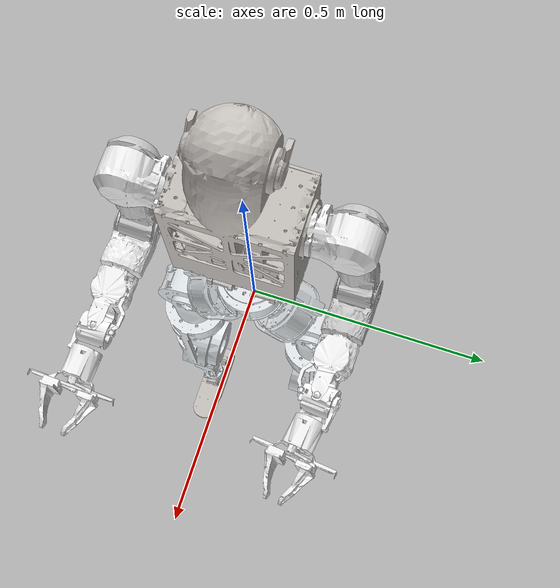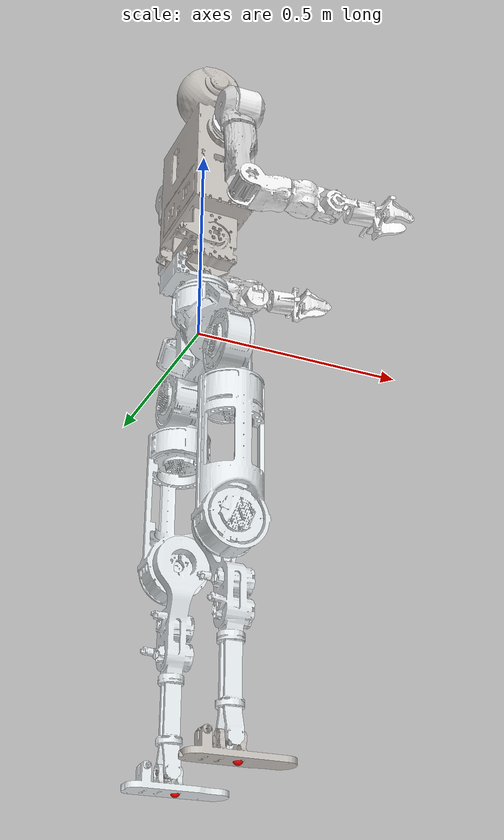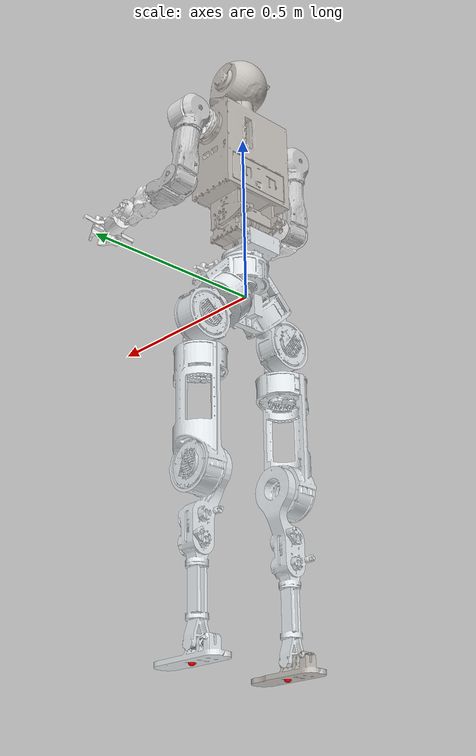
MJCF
<mujoco model="A00机器人全身">
  <compiler angle="radian" meshdir="meshes/" />
  <asset>
    <mesh name="base_link" file="base_link.STL" />
    <mesh name="right_hip_pitch" file="right_hip_pitch.STL" />
    <mesh name="right_hip_roll" file="right_hip_roll.STL" />
    <mesh name="right_hip_yaw" file="right_hip_yaw.STL" />
    <mesh name="right_knee" file="right_knee.STL" />
    <mesh name="right_ankle_pitch" file="right_ankle_pitch.STL" />
    <mesh name="right_ankle_roll" file="right_ankle_roll.STL" />
    <mesh name="left_hip_pitch" file="left_hip_pitch.STL" />
    <mesh name="left_hip_roll" file="left_hip_roll.STL" />
    <mesh name="left_hip_yaw" file="left_hip_yaw.STL" />
    <mesh name="left_knee" file="left_knee.STL" />
    <mesh name="left_ankle_pitch" file="left_ankle_pitch.STL" />
    <mesh name="left_ankle_roll" file="left_ankle_roll.STL" />
    <mesh name="waist_yaw" file="waist_yaw.STL" />
    <mesh name="waist_roll" file="waist_roll.STL" />
    <mesh name="waist_pitch" file="waist_pitch.STL" />
    <mesh name="left_shoulder_pitch" file="left_shoulder_pitch.STL" />
    <mesh name="left_shoulder_roll" file="left_shoulder_roll.STL" />
    <mesh name="left_shoulder_yaw" file="left_shoulder_yaw.STL" />
    <mesh name="left_elbow" file="left_elbow.STL" />
    <mesh name="left_wrist_yaw" file="left_wrist_yaw.STL" />
    <mesh name="left_wrist_roll" file="left_wrist_roll.STL" />
    <mesh name="left_wrist_pitch" file="left_wrist_pitch.STL" />
    <mesh name="left_finger" file="left_finger.STL" />
    <mesh name="right_shoulder_pitch" file="right_shoulder_pitch.STL" />
    <mesh name="right_shoulder_roll" file="right_shoulder_roll.STL" />
    <mesh name="right_shoulder_yaw" file="right_shoulder_yaw.STL" />
    <mesh name="right_elbow" file="right_elbow.STL" />
    <mesh name="right_wrist_yaw" file="right_wrist_yaw.STL" />
    <mesh name="right_wrist_roll" file="right_wrist_roll.STL" />
    <mesh name="right_wrist_pitch" file="right_wrist_pitch.STL" />
    <mesh name="right_finger" file="right_finger.STL" />
    <material name="base_link_mat" rgba="0.898 0.9176 0.9294 1" specular="0" />
    <material name="right_hip_pitch_mat" rgba="0.898 0.9176 0.9294 1" specular="0" />
    <material name="right_hip_roll_mat" rgba="0.898 0.9176 0.9294 1" specular="0" />
    <material name="right_hip_yaw_mat" rgba="0.898 0.9176 0.9294 1" specular="0" />
    <material name="right_knee_mat" rgba="0.898 0.9176 0.9294 1" specular="0" />
    <material name="right_ankle_pitch_mat" rgba="0.651 0.6196 0.5882 1" specular="0" />
    <material name="right_ankle_roll_mat" rgba="0.7765 0.7569 0.7373 1" specular="0" />
    <material name="left_hip_pitch_mat" rgba="0.898 0.9176 0.9294 1" specular="0" />
    <material name="left_hip_roll_mat" rgba="0.898 0.9176 0.9294 1" specular="0" />
    <material name="left_hip_yaw_mat" rgba="0.898 0.9176 0.9294 1" specular="0" />
    <material name="left_knee_mat" rgba="0.898 0.9176 0.9294 1" specular="0" />
    <material name="left_ankle_pitch_mat" rgba="0.651 0.6196 0.5882 1" specular="0" />
    <material name="left_ankle_roll_mat" rgba="0.898 0.9176 0.9294 1" specular="0" />
    <material name="waist_yaw_mat" rgba="0.898 0.9176 0.9294 1" specular="0" />
    <material name="waist_roll_mat" rgba="0.651 0.6196 0.5882 1" specular="0" />
    <material name="waist_pitch_mat" rgba="0.7765 0.7569 0.7373 1" specular="0" />
    <material name="left_shoulder_pitch_mat" rgba="0.9608 0.9608 0.9647 1" specular="0" />
    <material name="left_shoulder_roll_mat" rgba="0.7961 0.7961 0.7961 1" specular="0" />
    <material name="left_shoulder_yaw_mat" rgba="0.7961 0.7961 0.7961 1" specular="0" />
    <material name="left_elbow_mat" rgba="0.7961 0.7961 0.7961 1" specular="0" />
    <material name="left_wrist_yaw_mat" rgba="0.9608 0.9608 0.9647 1" specular="0" />
    <material name="left_wrist_roll_mat" rgba="0.9608 0.9608 0.9647 1" specular="0" />
    <material name="left_wrist_pitch_mat" rgba="0.9608 0.9608 0.9647 1" specular="0" />
    <material name="left_finger_mat" rgba="0.9608 0.9608 0.9647 1" specular="0" />
    <material name="right_shoulder_pitch_mat" rgba="0.9608 0.9608 0.9647 1" specular="0" />
    <material name="right_shoulder_roll_mat" rgba="0.7961 0.7961 0.7961 1" specular="0" />
    <material name="right_shoulder_yaw_mat" rgba="0.7961 0.7961 0.7961 1" specular="0" />
    <material name="right_elbow_mat" rgba="0.9608 0.9608 0.9647 1" specular="0" />
    <material name="right_wrist_yaw_mat" rgba="0.9608 0.9608 0.9647 1" specular="0" />
    <material name="right_wrist_roll_mat" rgba="0.9608 0.9608 0.9647 1" specular="0" />
    <material name="right_wrist_pitch_mat" rgba="0.9608 0.9608 0.9647 1" specular="0" />
    <material name="right_finger_mat" rgba="0.9608 0.9608 0.9647 1" specular="0" />
  </asset>

  <worldbody>
    <body name="base_link" pos="0 0 0">
      <freejoint/>
      <inertial pos="0.0062931 0.0000042 0.0048445" mass="6.7431024" fullinertia="0.04798608 0.02438048 0.03707175 -0.00000106 -0.00001458 -0.00000075"/>
      <geom pos="0 0 0" group="1" contype="0" conaffinity="0" material="base_link_mat" type="mesh" mesh="base_link" />
      <geom name="base_link_collision" pos="0 0 0" rgba="0 1 0 1" group="3" contype="1" conaffinity="1" type="mesh" mesh="base_link" />
      <site name="imu_in_base_link" size="0.01" pos="0 0 -0.006" group="5" rgba="1 1 1 1" />
      <body name="right_hip_pitch" pos="0.007 -0.088213 -0.043889" quat="0.3826809 0.9238806 0 0">
        <joint name="right_hip_pitch" type="hinge" axis="0 0 1" limited="true" range="-1.57 1.57" damping="0" frictionloss="0"/>
        <inertial pos="0.0034587 0.0001817 0.0762996" mass="2.1971591" fullinertia="0.00514701 0.00334734 0.0031234 0.00000153 -0.00000951 0.00002633"/>
        <geom pos="0 0 0" group="1" contype="0" conaffinity="0" material="right_hip_pitch_mat" type="mesh" mesh="right_hip_pitch" />
        <geom name="right_hip_pitch_collision" pos="0 0 0" rgba="0 1 0 1" group="3" contype="1" conaffinity="1" type="mesh" mesh="right_hip_pitch" />
        <body name="right_hip_roll" pos="0.027 0 0.079" quat="0.6532807 -0.2705975 0.6532827 -0.2705975">
          <joint name="right_hip_roll" type="hinge" axis="0 0 1" limited="true" range="-1.57 1.57" damping="0" frictionloss="0"/>
          <inertial pos="0.0000005 -0.1119888 -0.0108781" mass="1.9765809" fullinertia="0.00495257 0.00288709 0.00488194 0.00000035 -0.0000077 -0.00066567"/>
          <geom pos="0 0 0" group="1" contype="0" conaffinity="0" material="right_hip_roll_mat" type="mesh" mesh="right_hip_roll" />
          <geom name="right_hip_roll_collision" pos="0 0 0" rgba="0 1 0 1" group="3" contype="1" conaffinity="1" type="mesh" mesh="right_hip_roll" />
          <body name="right_hip_yaw" pos="0 -0.104 -0.015" quat="0.7071055 -0.7071081 0 0">
            <joint name="right_hip_yaw" type="hinge" axis="0 0 -1" limited="true" range="-1.57 1.57" damping="0" frictionloss="0"/>
            <inertial pos="-0.0147522 0.000006 -0.2198971" mass="3.662977" fullinertia="0.05609539 0.05317627 0.00828439 0.0000007 -0.00039396 0.0000083"/>
            <geom pos="0 0 0" group="1" contype="0" conaffinity="0" material="right_hip_yaw_mat" type="mesh" mesh="right_hip_yaw" />
            <geom name="right_hip_yaw_collision" pos="0 0 0" rgba="0 1 0 1" group="3" contype="1" conaffinity="1" type="mesh" mesh="right_hip_yaw" />
            <body name="right_knee" pos="0.012 0 -0.302" quat="0.4999982 0.5 0.5000018 0.5">
              <joint name="right_knee" type="hinge" axis="0 0 1" limited="true" range="-1.57 1.57" damping="0" frictionloss="0"/>
              <inertial pos="-0.0020085 -0.1592987 -0.0102605" mass="2.2468378" fullinertia="0.0335567 0.00227656 0.03319564 -0.00029446 -0.00005039 -0.00380525"/>
              <geom pos="0 0 0" group="1" contype="0" conaffinity="0" material="right_knee_mat" type="mesh" mesh="right_knee" />
              <geom name="right_knee_collision" pos="0 0 0" rgba="0 1 0 1" group="3" contype="1" conaffinity="1" type="mesh" mesh="right_knee" />
              <body name="right_ankle_pitch" pos="-0.003 -0.42597 -0.042">
                <joint name="right_ankle_pitch" type="hinge" axis="0 0 1" limited="true" range="-0.6 0.35" damping="0" frictionloss="0"/>
                <inertial pos="-0.0000001 0.0000001 0.02" mass="0.1042438" fullinertia="0.0000153304 0.0000243002 0.0000123329 -0.0000000001 0 0"/>
                <geom pos="0 0 0" group="1" contype="0" conaffinity="0" material="right_ankle_pitch_mat" type="mesh" mesh="right_ankle_pitch" />
                <geom name="right_ankle_pitch_collision" pos="0 0 0" rgba="0 1 0 1" group="3" contype="1" conaffinity="1" type="mesh" mesh="right_ankle_pitch" />
                <body name="right_ankle_roll" pos="-0.017 0 0.02" quat="0.7071055 0 -0.7071081 0">
                  <site name="right_foot" size="0.01" pos="0.0 -0.035 0.0" rgba="1 0 0 1" />
                  <joint name="right_ankle_roll" type="hinge" axis="0 0 1" limited="true" range="-0.2 0.2" damping="0" frictionloss="0"/>
                  <inertial pos="-0.0004155 -0.0232534 -0.0105366" mass="0.2486513" fullinertia="0.00082979 0.00084968 0.00012644 -0.00000091 0.00000895 0.00004953"/>
                  <geom pos="0 0 0" group="1" contype="0" conaffinity="0" material="right_ankle_roll_mat" type="mesh" mesh="right_ankle_roll" />
                  <geom name="right_foot1_collision" fromto="-0.027 -0.035 -0.09 -0.027 -0.035 0.095" rgba="0 1 0 1" group="3" contype="1" conaffinity="1" type="capsule" size="0.008" />
                  <geom name="right_foot2_collision" fromto="-0.013 -0.035 -0.1 -0.013 -0.035 0.105" rgba="0 1 0 1" group="3" contype="1" conaffinity="1" type="capsule" size="0.008" />
                  <geom name="right_foot3_collision" fromto="0.0 -0.035 -0.102 0.0 -0.035 0.106" rgba="0 1 0 1" group="3" contype="1" conaffinity="1" type="capsule" size="0.008" />
                  <geom name="right_foot4_collision" fromto="0.012 -0.035 -0.1 0.012 -0.035 0.102" rgba="0 1 0 1" group="3" contype="1" conaffinity="1" type="capsule" size="0.008" />
                  <geom name="right_foot5_collision" fromto="0.026 -0.035 -0.09 0.026 -0.035 0.095" rgba="0 1 0 1" group="3" contype="1" conaffinity="1" type="capsule" size="0.008" />
                </body>
              </body>
            </body>
          </body>
        </body>
      </body>
      <body name="left_hip_pitch" pos="0.007 0.088213 -0.043889" quat="-0.0000014 -0.0000034 -0.9238806 -0.3826809">
        <joint name="left_hip_pitch" type="hinge" axis="0 0 1" limited="true" range="-1.57 1.57" damping="0" frictionloss="0"/>
        <inertial pos="-0.0034619 0.000178 0.0762952" mass="2.1976617" fullinertia="0.00514942 0.00334799 0.00312555 -0.00000118 0.00000956 0.00002138"/>
        <geom pos="0 0 0" group="1" contype="0" conaffinity="0" material="left_hip_pitch_mat" type="mesh" mesh="left_hip_pitch" />
        <geom name="left_hip_pitch_collision" pos="0 0 0" rgba="0 1 0 1" group="3" contype="1" conaffinity="1" type="mesh" mesh="left_hip_pitch" />
        <body name="left_hip_roll" pos="-0.027 0 0.079" quat="0.6532807 -0.2705975 -0.6532827 0.2705975">
          <joint name="left_hip_roll" type="hinge" axis="0 0 1" limited="true" range="-1.57 1.57" damping="0" frictionloss="0"/>
          <inertial pos="-0.0000038 -0.1119888 -0.0108481" mass="1.9765809" fullinertia="0.00495208 0.0028866 0.00488194 -0.00000014 -0.00000773 -0.00066274"/>
          <geom pos="0 0 0" group="1" contype="0" conaffinity="0" material="left_hip_roll_mat" type="mesh" mesh="left_hip_roll" />
          <geom name="left_hip_roll_collision" pos="0 0 0" rgba="0 1 0 1" group="3" contype="1" conaffinity="1" type="mesh" mesh="left_hip_roll" />
          <body name="left_hip_yaw" pos="0 -0.104 -0.015" quat="0.7071055 -0.7071081 0 0">
            <joint name="left_hip_yaw" type="hinge" axis="0 0 -1" limited="true" range="-1.57 1.57" damping="0" frictionloss="0"/>
            <inertial pos="0.0147522 -0.000006 -0.2198971" mass="3.662977" fullinertia="0.05609539 0.05317627 0.00828439 0.0000007 0.00039396 -0.0000083"/>
            <geom pos="0 0 0" group="1" contype="0" conaffinity="0" material="left_hip_yaw_mat" type="mesh" mesh="left_hip_yaw" />
            <geom name="left_hip_yaw_collision" pos="0 0 0" rgba="0 1 0 1" group="3" contype="1" conaffinity="1" type="mesh" mesh="left_hip_yaw" />
            <body name="left_knee" pos="-0.012 0 -0.302" quat="0.4999982 0.5 -0.5000018 -0.5">
              <joint name="left_knee" type="hinge" axis="0 0 1" limited="true" range="-1.57 1.57" damping="0" frictionloss="0"/>
              <inertial pos="0.0020334 -0.1612384 -0.0106691" mass="2.220012" fullinertia="0.03282863 0.00223388 0.03248592 0.00028772 0.00004968 -0.00366369"/>
              <geom pos="0 0 0" group="1" contype="0" conaffinity="0" material="left_knee_mat" type="mesh" mesh="left_knee" />
              <geom name="left_knee_collision" pos="0 0 0" rgba="0 1 0 1" group="3" contype="1" conaffinity="1" type="mesh" mesh="left_knee" />
              <body name="left_ankle_pitch" pos="0.003 -0.42597 -0.042">
                <joint name="left_ankle_pitch" type="hinge" axis="0 0 -1" limited="true" range="-0.6 0.35" damping="0" frictionloss="0"/>
                <inertial pos="-0.0000001 0.0000001 0.02" mass="0.1042438" fullinertia="0.0000153304 0.0000243002 0.0000123329 -0.0000000001 0 0"/>
                <geom pos="0 0 0" group="1" contype="0" conaffinity="0" material="left_ankle_pitch_mat" type="mesh" mesh="left_ankle_pitch" />
                <geom name="left_ankle_pitch_collision" pos="0 0 0" rgba="0 1 0 1" group="3" contype="1" conaffinity="1" type="mesh" mesh="left_ankle_pitch" />
                <body name="left_ankle_roll" pos="0.017 0 0.02" quat="0.7071055 0 0.7071081 0">
                  <site name="left_foot" size="0.01" pos="0 -0.035 0" rgba="1 0 0 1" />
                  <joint name="left_ankle_roll" type="hinge" axis="0 0 1" limited="true" range="-0.2 0.2" damping="0" frictionloss="0"/>
                  <inertial pos="0.0004117 -0.023772 -0.0097839" mass="0.2432257" fullinertia="0.00082019 0.00084304 0.00012262 0.00000091 -0.00000908 0.00004526"/>
                  <geom pos="0 0 0" group="1" contype="0" conaffinity="0" material="left_ankle_roll_mat" type="mesh" mesh="left_ankle_roll" />
                  <geom name="left_foot1_collision" fromto="-0.027 -0.035 -0.09 -0.027 -0.035 0.095" rgba="0 1 0 1" group="3" contype="1" conaffinity="1" type="capsule" size="0.008" />
                  <geom name="left_foot2_collision" fromto="-0.013 -0.035 -0.1 -0.013 -0.035 0.105" rgba="0 1 0 1" group="3" contype="1" conaffinity="1" type="capsule" size="0.008" />
                  <geom name="left_foot3_collision" fromto="0.0 -0.035 -0.102 0.0 -0.035 0.106"  rgba="0 1 0 1" group="3" contype="1" conaffinity="1" type="capsule" size="0.008" />
                  <geom name="left_foot4_collision" fromto="0.012 -0.035 -0.1 0.012 -0.035 0.102" rgba="0 1 0 1" group="3" contype="1" conaffinity="1" type="capsule" size="0.008" />
                  <geom name="left_foot5_collision" fromto="0.026 -0.035 -0.09 0.026 -0.035 0.095" rgba="0 1 0 1" group="3" contype="1" conaffinity="1" type="capsule" size="0.008" />
                </body>
              </body>
            </body>
          </body>
        </body>
      </body>
      <body name="waist_yaw" pos="0.007 0 0.0895" quat="0.7071055 0 0 0.7071081">
        <joint name="waist_yaw" type="hinge" axis="0 0 1" limited="true" range="-1.57 1.57" damping="0" frictionloss="0"/>
        <inertial pos="0.0000024 0.0275971 0.038442" mass="0.9255527" fullinertia="0.00189118 0.00118183 0.00250356 -0.00000006 0.00000003 -0.00035445"/>
        <geom pos="0 0 0" group="1" contype="0" conaffinity="0" material="waist_yaw_mat" type="mesh" mesh="waist_yaw" />
        <body name="waist_roll" pos="0 0.017 0.062" quat="0.7071055 0.7071081 0 0">
          <joint name="waist_roll" type="hinge" axis="0 0 1" limited="true" range="-1.57 1.57" damping="0" frictionloss="0"/>
          <inertial pos="0 -0.0000001 0.0169999" mass="0.1042438" fullinertia="0.0000123329 0.0000243002 0.0000153304 0 0 0.0000000001"/>
          <geom pos="0 0 0" group="1" contype="0" conaffinity="0" material="waist_roll_mat" type="mesh" mesh="waist_roll" />
          <geom name="waist_roll_collision" pos="0 0 0" rgba="0 1 0 1" group="3" contype="1" conaffinity="1" type="mesh" mesh="waist_roll" />
          <body name="waist_pitch" pos="-0.02 0 0.017" quat="0.7071055 0 -0.7071081 0">
            <joint name="waist_pitch" type="hinge" axis="0 0 -1" limited="true" range="-1.57 1.57" damping="0" frictionloss="0"/>
            <inertial pos="-0.00035524 0.22687259 -0.01939247" mass="11.90063406" fullinertia="0.25283395 0.08266796 0.20541732 -0.00277279 0.00003193 0.00050113"/>
            <geom pos="0 0 0" group="1" contype="0" conaffinity="0" material="waist_pitch_mat" type="mesh" mesh="waist_pitch" />
            <geom name="waist_pitch_collision" pos="0 0 0" rgba="0 1 0 1" group="3" contype="1" conaffinity="1" type="mesh" mesh="waist_pitch" />
            <body name="left_shoulder_pitch" pos="0.0025 0.3451 -0.15455" quat="-0.0259825 0.5949072 0.8026093 0.0350529">
              <joint name="left_shoulder_pitch" type="hinge" axis="0 0 1" limited="true" range="-1.57 1.57" damping="0" frictionloss="0"/>
              <inertial pos="-0.00024072 0.00155448 0.05746059" mass="0.99428969" fullinertia="0.00096515 0.00119922 0.00084141 -0.00006657 0.00001074 -0.00000409"/>
              <geom pos="0 0 0" group="1" contype="0" conaffinity="0" material="left_shoulder_pitch_mat" type="mesh" mesh="left_shoulder_pitch" />
              <geom name="left_shoulder_pitch_collision" pos="0 0 0" rgba="0 1 0 1" group="3" contype="1" conaffinity="1" type="mesh" mesh="left_shoulder_pitch" />
              <body name="left_shoulder_roll" pos="0.0074164 -0.029172 0.06" quat="-0.4279908 -0.5534975 0.440046 -0.5628711">
                <joint name="left_shoulder_roll" type="hinge" axis="0 0 1" limited="true" range="-1.57 1.57" damping="0" frictionloss="0"/>
                <inertial pos="0.00354735 0.08361811 -0.02642603" mass="0.45198917" fullinertia="0.00054086 0.00024961 0.00050962 -0.00001344 0.00000501 0.00011474"/>
                <geom pos="0 0 0" group="1" contype="0" conaffinity="0" material="left_shoulder_roll_mat" type="mesh" mesh="left_shoulder_roll" />
                <geom name="left_shoulder_roll_collision" pos="0 0 0" rgba="0 1 0 1" group="3" contype="1" conaffinity="1" type="mesh" mesh="left_shoulder_roll" />
                <body name="left_shoulder_yaw" pos="0.0027403 0.066193 -0.0301" quat="-0.0189534 -0.0481864 -0.7054643 0.7068514">
                  <joint name="left_shoulder_yaw" type="hinge" axis="0 0 -1" limited="true" range="-1.57 1.57" damping="0" frictionloss="0"/>
                  <inertial pos="0.00291220 -0.00187145 -0.13937814" mass="0.46110213" fullinertia="0.00079603 0.00081628 0.00026654 0.00000104 0.00002622 0.00002879"/>
                  <geom pos="0 0 0" group="1" contype="0" conaffinity="0" material="left_shoulder_yaw_mat" type="mesh" mesh="left_shoulder_yaw" />
                  <geom name="left_shoulder_yaw_collision" pos="0 0 0" rgba="0 1 0 1" group="3" contype="1" conaffinity="1" type="mesh" mesh="left_shoulder_yaw" />
                  <body name="left_elbow" pos="0.031335 -0.0036734 -0.15375" quat="0.7066453 0.1076387 0.6988665 0.0255339">
                    <joint name="left_elbow" type="hinge" axis="0 0 1" limited="true" range="-1.57 1.57" damping="0" frictionloss="0"/>
                    <inertial pos="0.01733355 0.06611250 -0.03129736" mass="0.37150169" fullinertia="0.00028630 0.00021948 0.00025318 -0.00000388 0.00000175 0.00000693"/>
                    <geom pos="0 0 0" group="1" contype="0" conaffinity="0" material="left_elbow_mat" type="mesh" mesh="left_elbow" />
                    <geom name="left_elbow_collision" pos="0 0 0" rgba="0 1 0 1" group="3" contype="1" conaffinity="1" type="mesh" mesh="left_elbow" />
                    <body name="left_wrist_yaw" pos="0.022353 0.092847 -0.0315" quat="0.639372 -0.5509247 0.4432638 0.3019977">
                      <joint name="left_wrist_yaw" type="hinge" axis="0 0 1" limited="true" range="-1.57 1.57" damping="0" frictionloss="0"/>
                      <inertial pos="0.00215046 -0.00339216 0.04463842" mass="0.37338792" fullinertia="0.00021849 0.00022143 0.00018352 -0.00000028 0.00000175 0.00000068"/>
                      <geom pos="0 0 0" group="1" contype="0" conaffinity="0" material="left_wrist_yaw_mat" type="mesh" mesh="left_wrist_yaw" />
                      <body name="left_wrist_roll" pos="-0.016942 0.029478 0.1205" quat="0.6937685 0.6696136 0.227199 0.1366872">
                        <joint name="left_wrist_roll" type="hinge" axis="0 0 -1" limited="true" range="-1.57 1.57" damping="0" frictionloss="0"/>
                        <inertial pos="-0.00125534 -0.00033063 0.03346690" mass="0.31786957" fullinertia="0.00013400 0.00012943 0.00012202 0.00000146 -0.00000066 -0.00000015"/>
                        <geom pos="0 0 0" group="1" contype="0" conaffinity="0" material="left_wrist_roll_mat" type="mesh" mesh="left_wrist_roll" />
                        <geom name="left_wrist_roll_collision" pos="0 0 0" rgba="0 1 0 1" group="3" contype="1" conaffinity="1" type="mesh" mesh="left_wrist_roll" />
                        <body name="left_wrist_pitch" pos="0.019961 0.00467 0.0335" quat="0.7071061 -0.1618228 0.6883413 -0.0007766">
                          <joint name="left_wrist_pitch" type="hinge" axis="0 0 1" limited="true" range="-1.57 1.57" damping="0" frictionloss="0"/>
                          <inertial pos="-0.01302796 0.06900305 -0.01935257" mass="0.34835767" fullinertia="0.00024387 0.00017643 0.00021052 0.00001236 -0.00000454 0.00002402"/>
                          <geom pos="0 0 0" group="1" contype="0" conaffinity="0" material="left_wrist_pitch_mat" type="mesh" mesh="left_wrist_pitch" />
                          <geom name="left_wrist_pitch_collision" pos="0 0 0" rgba="0 1 0 1" group="3" contype="1" conaffinity="1" type="mesh" mesh="left_wrist_pitch" />
                          <body name="left_finger" pos="-0.017563 0.093872 -0.0205" quat="0.2961866 -0.1730274 -0.6856114 -0.6420841">
                            <inertial pos="-0.0003188 0.0002576 0.0366513" mass="0.0905277" fullinertia="0.00010388 0.00008605 0.00008941 -0.00001871 0.00000036 -0.0000003"/>
                            <geom pos="0 0 0" group="1" contype="0" conaffinity="0" material="left_finger_mat" type="mesh" mesh="left_finger" />
                            <geom name="left_finger_collision" pos="0 0 0" rgba="0 1 0 1" group="3" contype="1" conaffinity="1" type="mesh" mesh="left_finger" />
                          </body>
                        </body>
                      </body>
                    </body>
                  </body>
                </body>
              </body>
            </body>
            <body name="right_shoulder_pitch" pos="0.0025 0.3451 0.11485" quat="0.7032575 -0.0307045 -0.0309813 -0.7095959">
              <joint name="right_shoulder_pitch" type="hinge" axis="0 0 1" limited="true" range="-1.57 1.57" damping="0" frictionloss="0"/>
              <inertial pos="-0.00019633 0.00159589 0.05746059" mass="0.99428969" fullinertia="0.00094975 0.00121451 0.00084130 -0.00001398 -0.00000596 -0.00000455"/>
              <geom pos="0 0 0" group="1" contype="0" conaffinity="0" material="right_shoulder_pitch_mat" type="mesh" mesh="right_shoulder_pitch" />
              <geom name="right_shoulder_pitch_collision" pos="0 0 0" rgba="0 1 0 1" group="3" contype="1" conaffinity="1" type="mesh" mesh="right_shoulder_pitch" />
              <body name="right_shoulder_roll" pos="0.0017459 -0.029048 0.06" quat="0.5134938 0.4834053 0.5160613 -0.4861318">
                <joint name="right_shoulder_roll" type="hinge" axis="0 0 1" limited="true" range="-1.57 1.57" damping="0" frictionloss="0"/>
                <inertial pos="0.00252517 0.08365521 -0.02541605" mass="0.45198917" fullinertia="0.00054112 0.00024929 0.00050961 -0.00000986 0.00000333 0.00011464"/>
                <geom pos="0 0 0" group="1" contype="0" conaffinity="0" material="right_shoulder_roll_mat" type="mesh" mesh="right_shoulder_roll" />
                <geom name="right_shoulder_roll_collision" pos="0 0 0" rgba="0 1 0 1" group="3" contype="1" conaffinity="1" type="mesh" mesh="right_shoulder_roll" />
                <body name="right_shoulder_yaw" pos="0.0019322 0.066222 -0.0291" quat="0.080854 0.0603166 -0.7045312 0.7024673">
                  <joint name="right_shoulder_yaw" type="hinge" axis="0 0 -1" limited="true" range="-1.57 1.57" damping="0" frictionloss="0"/>
                  <inertial pos="0.00333614 -0.00092383 -0.13937814" mass="0.46110213" fullinertia="0.00079722 0.00081509 0.00026654 -0.00000488 0.00001650 0.00003527"/>
                  <geom pos="0 0 0" group="1" contype="0" conaffinity="0" material="right_shoulder_yaw_mat" type="mesh" mesh="right_shoulder_yaw" />
                  <geom name="right_shoulder_yaw_collision" pos="0 0 0" rgba="0 1 0 1" group="3" contype="1" conaffinity="1" type="mesh" mesh="right_shoulder_yaw" />
                  <body name="right_elbow" pos="0.031016 0.0057828 -0.15375" quat="0.7068309 -0.1489467 0.6912416 -0.0197485">
                    <joint name="right_elbow" type="hinge" axis="0 0 1" limited="true" range="-1.57 1.57" damping="0" frictionloss="0"/>
                    <inertial pos="-0.01174416 0.06733045 -0.03129736" mass="0.37150169" fullinertia="0.00027766 0.00022811 0.00025318 0.00002275 -0.00000130 0.00000703"/>
                    <geom pos="0 0 0" group="1" contype="0" conaffinity="0" material="right_elbow_mat" type="mesh" mesh="right_elbow" />
                    <geom name="right_elbow_collision" pos="0 0 0" rgba="0 1 0 1" group="3" contype="1" conaffinity="1" type="mesh" mesh="right_elbow" />
                    <body name="right_wrist_yaw" pos="-0.018303 0.09373 -0.0315" quat="0.3368043 -0.2113697 -0.6747771 -0.6217408">
                      <joint name="right_wrist_yaw" type="hinge" axis="0 0 1" limited="true" range="-1.57 1.57" damping="0" frictionloss="0"/>
                      <inertial pos="-0.00287036 0.00281010 0.04467449" mass="0.37338877" fullinertia="0.00022202 0.00021955 0.00018355 -0.00000087 0.00000109 0.00000214"/>
                      <geom pos="0 0 0" group="1" contype="0" conaffinity="0" material="right_wrist_yaw_mat" type="mesh" mesh="right_wrist_yaw" />
                      <body name="right_wrist_roll" pos="0.024925 -0.022383 0.1205" quat="0.3510132 0.2221887 -0.6712928 -0.6138305">
                        <joint name="right_wrist_roll" type="hinge" axis="0 0 -1" limited="true" range="-1.57 1.57" damping="0" frictionloss="0"/>
                        <inertial pos="0.00127283 -0.00025517 0.03321438" mass="0.31786957" fullinertia="0.00013413 0.00012925 0.00012202 -0.00000118 0.00000225 -0.00000038"/>
                        <geom pos="0 0 0" group="1" contype="0" conaffinity="0" material="right_wrist_roll_mat" type="mesh" mesh="right_wrist_roll" />
                        <geom name="right_wrist_roll_collision" pos="0 0 0" rgba="0 1 0 1" group="3" contype="1" conaffinity="1" type="mesh" mesh="right_wrist_roll" />
                        <body name="right_wrist_pitch" pos="-0.020204 0.0034712 0.0335" quat="0.6711104 0.1059121 -0.6991305 -0.2227329">
                          <joint name="right_wrist_pitch" type="hinge" axis="0 0 1" limited="true" range="-1.57 1.57" damping="0" frictionloss="0"/>
                          <inertial pos="-0.03389942 0.06149778 -0.01935257" mass="0.34835767" fullinertia="0.00022866 0.00019164 0.00021052 0.00003078 -0.00001180 0.00002142"/>
                          <geom pos="0 0 0" group="1" contype="0" conaffinity="0" material="right_wrist_pitch_mat" type="mesh" mesh="right_wrist_pitch" />
                          <geom name="right_wrist_pitch_collision" pos="0 0 0" rgba="0 1 0 1" group="3" contype="1" conaffinity="1" type="mesh" mesh="right_wrist_pitch" />
                          <body name="right_finger" pos="-0.046239 0.08356 -0.0205" quat="0.5405066 -0.2522045 -0.6606008 -0.4559079">
                            <inertial pos="0.0001349 -0.000387 0.0366514" mass="0.0905277" fullinertia="0.00008641 0.00013308 0.00011896 -0.00002723 -0.00000015 0.00000044"/>
                            <geom pos="0 0 0" group="1" contype="0" conaffinity="0" material="right_finger_mat" type="mesh" mesh="right_finger" />
                            <geom name="right_finger_collision" pos="0 0 0" rgba="0 1 0 1" group="3" contype="1" conaffinity="1" type="mesh" mesh="right_finger" />
                          </body>
                        </body>
                      </body>
                    </body>
                  </body>
                </body>
              </body>
            </body>
          </body>
        </body>
      </body>
    </body>
  </worldbody>
  <actuator>
    <position name="right_hip_pitch_servo" joint="right_hip_pitch" kp="10" forcelimited="true" forcerange="-20 20" />
    <position name="right_hip_roll_servo" joint="right_hip_roll" kp="10" forcelimited="true" forcerange="-20 20" />
    <position name="right_hip_yaw_servo" joint="right_hip_yaw" kp="10" forcelimited="true" forcerange="-20 20" />
    <position name="right_knee_servo" joint="right_knee" kp="10" forcelimited="true" forcerange="-20 20" />
    <position name="right_ankle_pitch_servo" joint="right_ankle_pitch" kp="10" forcelimited="true" forcerange="-20 20" />
    <position name="right_ankle_roll_servo" joint="right_ankle_roll" kp="10" forcelimited="true" forcerange="-20 20" />
    <position name="left_hip_pitch_servo" joint="left_hip_pitch" kp="10" forcelimited="true" forcerange="-20 20" />
    <position name="left_hip_roll_servo" joint="left_hip_roll" kp="10" forcelimited="true" forcerange="-20 20" />
    <position name="left_hip_yaw_servo" joint="left_hip_yaw" kp="10" forcelimited="true" forcerange="-20 20" />
    <position name="left_knee_servo" joint="left_knee" kp="10" forcelimited="true" forcerange="-20 20" />
    <position name="left_ankle_pitch_servo" joint="left_ankle_pitch" kp="10" forcelimited="true" forcerange="-20 20" />
    <position name="left_ankle_roll_servo" joint="left_ankle_roll" kp="10" forcelimited="true" forcerange="-20 20" />
    <position name="waist_yaw_servo" joint="waist_yaw" kp="10" forcelimited="true" forcerange="-20 20" />
    <position name="waist_roll_servo" joint="waist_roll" kp="10" forcelimited="true" forcerange="-20 20" />
    <position name="waist_pitch_servo" joint="waist_pitch" kp="10" forcelimited="true" forcerange="-20 20" />
    <position name="left_shoulder_pitch_servo" joint="left_shoulder_pitch" kp="10" forcelimited="true" forcerange="-20 20" />
    <position name="left_shoulder_roll_servo" joint="left_shoulder_roll" kp="10" forcelimited="true" forcerange="-20 20" />
    <position name="left_shoulder_yaw_servo" joint="left_shoulder_yaw" kp="10" forcelimited="true" forcerange="-20 20" />
    <position name="left_elbow_servo" joint="left_elbow" kp="10" forcelimited="true" forcerange="-20 20" />
    <position name="left_wrist_yaw_servo" joint="left_wrist_yaw" kp="10" forcelimited="true" forcerange="-20 20" />
    <position name="left_wrist_roll_servo" joint="left_wrist_roll" kp="10" forcelimited="true" forcerange="-20 20" />
    <position name="left_wrist_pitch_servo" joint="left_wrist_pitch" kp="10" forcelimited="true" forcerange="-20 20" />
    <position name="right_shoulder_pitch_servo" joint="right_shoulder_pitch" kp="10" forcelimited="true" forcerange="-20 20" />
    <position name="right_shoulder_roll_servo" joint="right_shoulder_roll" kp="10" forcelimited="true" forcerange="-20 20" />
    <position name="right_shoulder_yaw_servo" joint="right_shoulder_yaw" kp="10" forcelimited="true" forcerange="-20 20" />
    <position name="right_elbow_servo" joint="right_elbow" kp="10" forcelimited="true" forcerange="-20 20" />
    <position name="right_wrist_yaw_servo" joint="right_wrist_yaw" kp="10" forcelimited="true" forcerange="-20 20" />
    <position name="right_wrist_roll_servo" joint="right_wrist_roll" kp="10" forcelimited="true" forcerange="-20 20" />
    <position name="right_wrist_pitch_servo" joint="right_wrist_pitch" kp="10" forcelimited="true" forcerange="-20 20" />
  </actuator>
  <sensor>
    <gyro name="imu_ang_vel" site="imu_in_base_link" />
    <velocimeter name="imu_lin_vel" site="imu_in_base_link" />
    <accelerometer name="imu_lin_acc" site="imu_in_base_link" />
    <framezaxis name="imu_upvector" objtype="body" objname="world" reftype="site" refname="imu_in_base_link" />
    <subtreeangmom name="root_angmom" body="base_link" />
  </sensor>
</mujoco>
